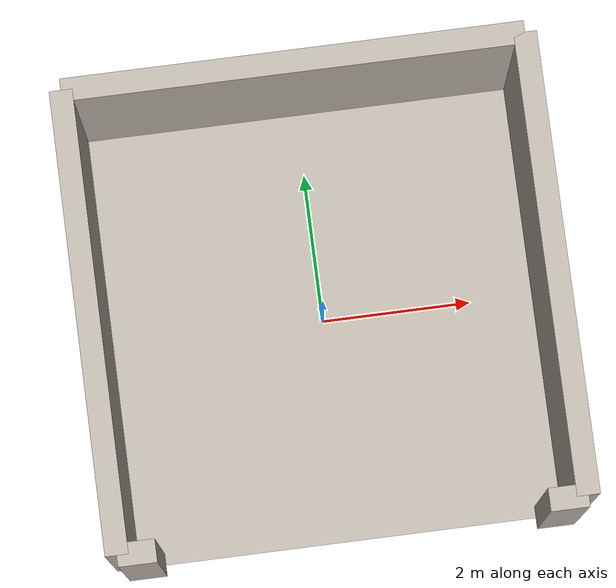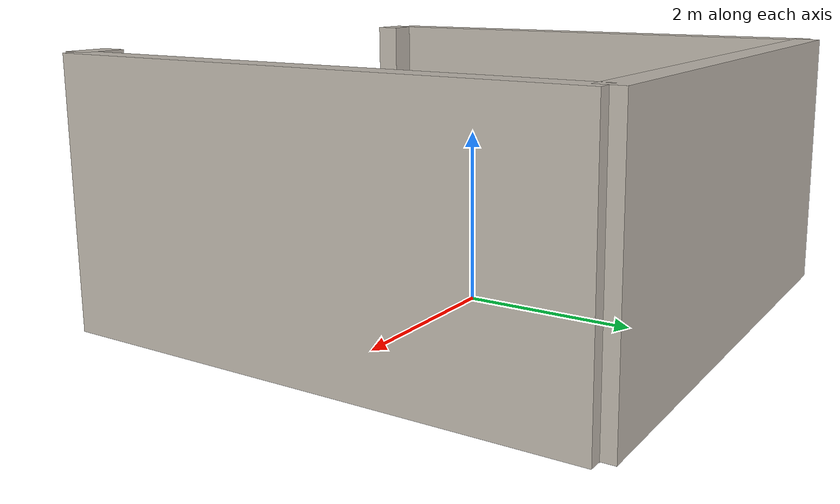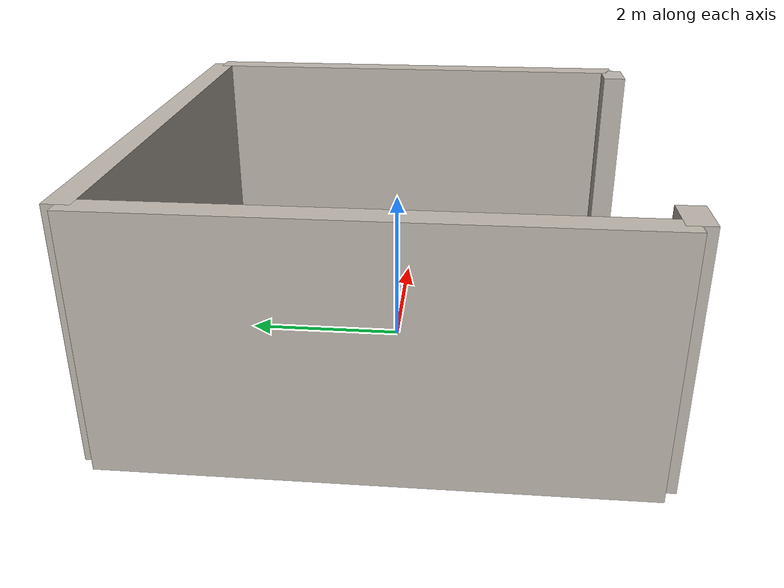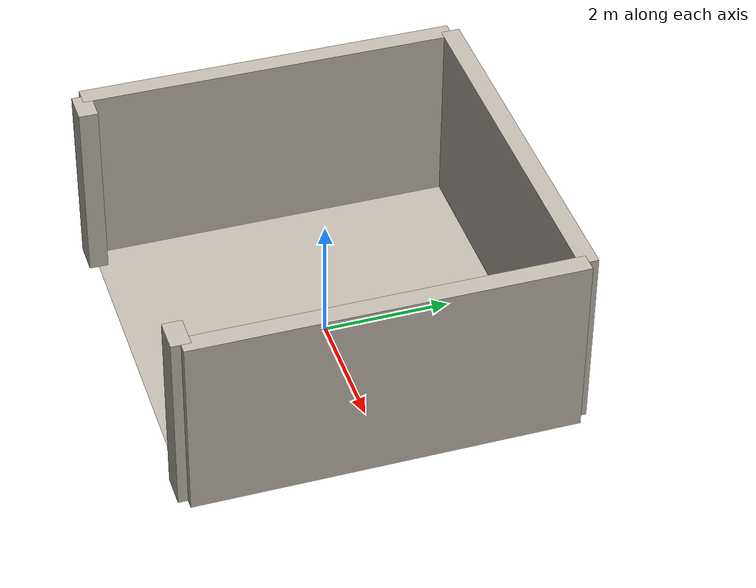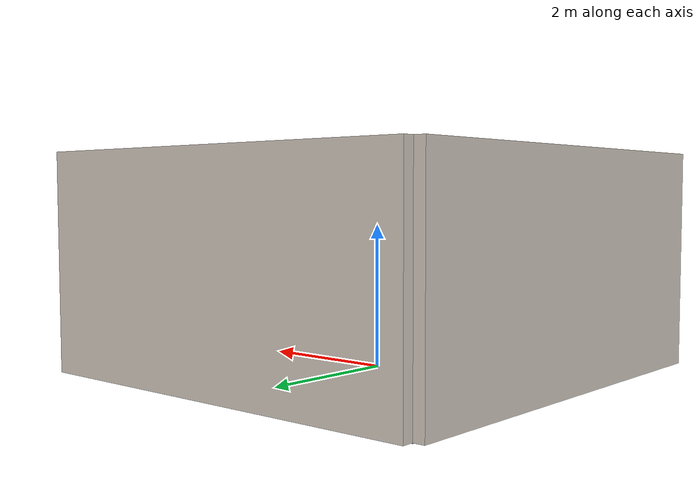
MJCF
<mujoco model="garage">
<visual>
  <headlight diffuse="0.6 0.6 0.6" ambient="0.3 0.3 0.3" specular="0 0 0"/>
  <rgba haze="0.15 0.25 0.35 1"/>
</visual>

<asset>
  <texture name="concrete" type="2d" file="../textures/concrete.png"/>
  <material name="floor_material" texture="concrete" texrepeat="8 8" specular="0.3" shininess="0.2"/>
  <texture name="concrete" type="2d" file="../textures/concrete.png"/>
  <material name="wall_material" texture="concrete" texrepeat="4 4" specular="0.05" shininess="0.01"/>
</asset>

<worldbody>
  <geom name="floor" type="plane" size="3.0 3.0 0.1" pos="0 0 0" material="floor_material" friction="1.0 0.05 0.01"/>
  <geom name="wall_north" type="box" size="3.0 0.15 1.5" pos="0 3.0 1.5" material="wall_material"/>
  <geom name="wall_south_left" type="box" size="0.25 0.15 1.5" pos="-2.75 -3.0 1.5" material="wall_material"/>
  <geom name="wall_south_right" type="box" size="0.25 0.15 1.5" pos="2.75 -3.0 1.5" material="wall_material"/>
  <!-- garage_door opening: 5m x 2.5m @ position 0m, interactive: no (just opening) -->
  <geom name="wall_east" type="box" size="0.15 3.0 1.5" pos="3.0 0 1.5" material="wall_material"/>
  <geom name="wall_west" type="box" size="0.15 3.0 1.5" pos="-3.0 0 1.5" material="wall_material"/>
</worldbody>
</mujoco>
